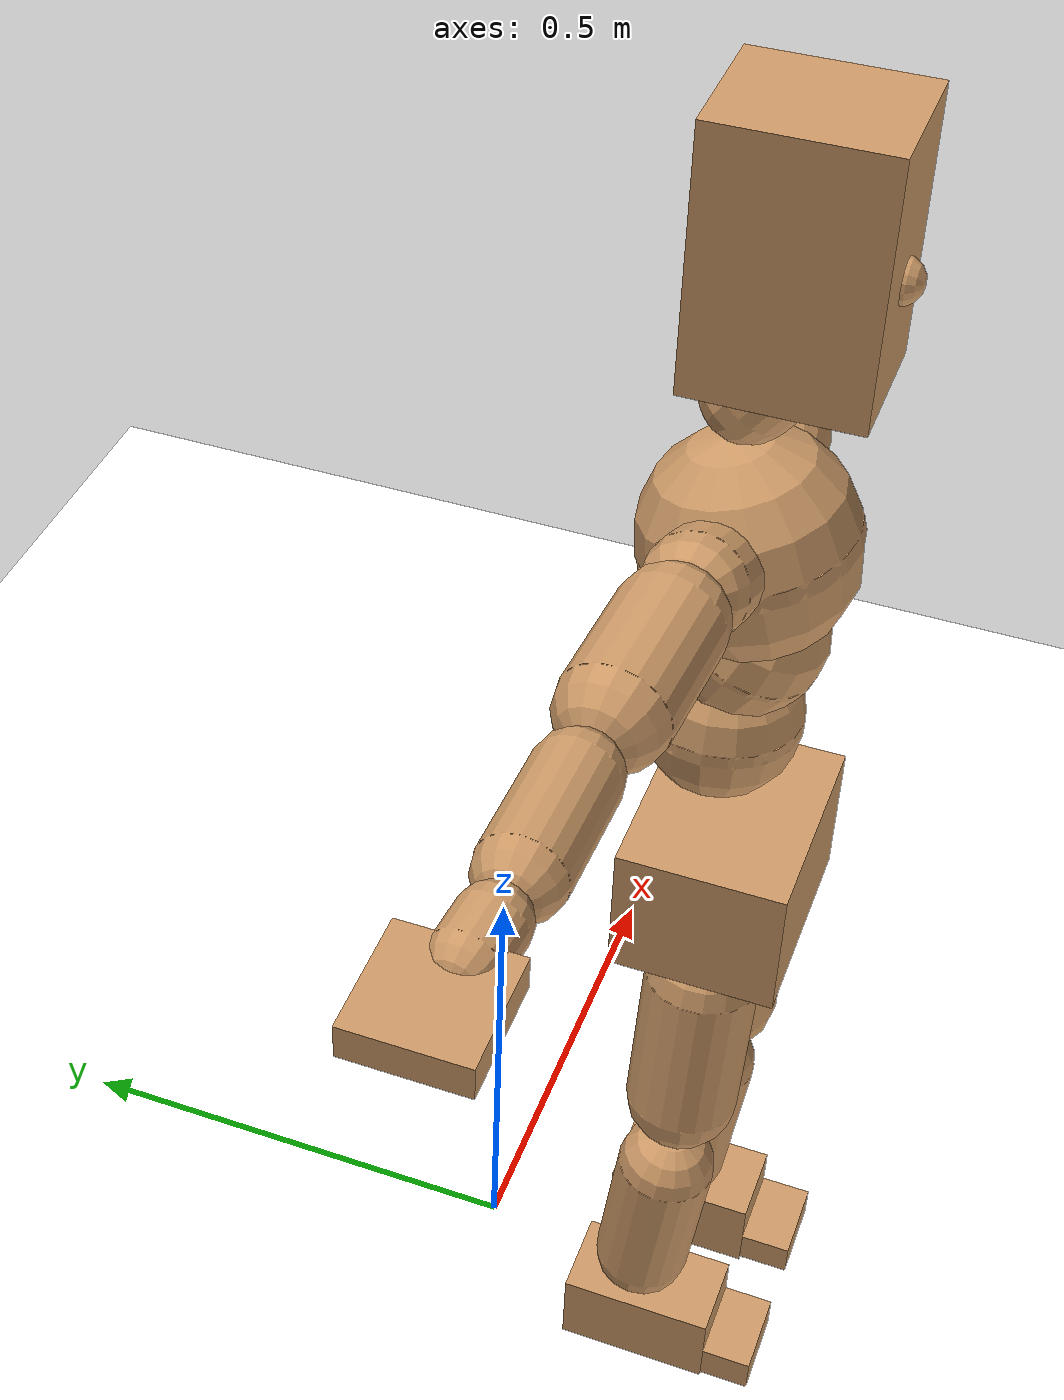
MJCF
<mujoco model="humanoid">
  <option integrator="implicitfast" />

  <visual>
    <global offwidth="1280" offheight="960" />
    <headlight active="1" ambient="0.34 0.34 0.34" diffuse="0.5 0.5 0.5" />
  </visual>

  <default>
    <joint damping="2" stiffness="2" armature="0.01" limited="true" solimplimit="0 .99 .01" />
    <geom condim="1" friction="0.7 0.005 0.0001" solimp=".99 .99 .003" solref="0.015 1" margin="0.001" rgba="0.8 0.6 .4 1" />
    <default class="smplcontact">
      <geom condim="3" friction="1. 0.005 0.0001" solref="0.015 1" solimp="0.98 0.98 0.001" priority="1" />
    </default>
    <default class="stiff_medium">
      <joint stiffness="10" />
    </default>
    <default class="stiff_medium_higher">
      <joint stiffness="50" />
    </default>
    <default class="stiff_high">
      <joint stiffness="100" />
    </default>
  </default>

  <asset>
    <texture type="skybox" builtin="gradient" rgb1="0.99 0.99 0.99" rgb2="0.608 0.828 0.892" width="100" />
    <texture builtin="flat" height="1278" mark="cross" markrgb="1 1 1" name="texgeom" random="0.01" rgb1="0.8 0.6 0.4" rgb2="0.8 0.6 0.4" type="cube" width="127" />
    <texture name="texplane" type="2d" builtin="checker" markrgb="1 1 1" rgb1="0.756 0.772 0.76" rgb2="0.6 0.6 0.6" width="100" height="100" />
    <material name="MatPlane" reflectance="0.5" texture="texplane" texrepeat="1 1" texuniform="true" />
    <material name="geom" texture="texgeom" texuniform="true" />
  </asset>

  <worldbody>
    <light name="tracking_light" pos="0 0 7" dir="0 0 -1" directional="true" cutoff="100" exponent="1" diffuse="1 1 1" specular="0.1 0.1 0.1" mode="trackcom" />
    <camera name="back" pos="0 3 2.4" xyaxes="-1 0 0 0 -1 2" mode="trackcom" />
    <camera name="side" pos="-3 0 2.4" xyaxes="0 -1 0 1 0 2" mode="trackcom" />
    <camera name="front_side" pos="-2.8 -2.8 0.8" xyaxes="0.5 -0.5 0 0.1 0.1 1" mode="trackcom" />
    <geom condim="3" name="floor" pos="0 0 0" rgba="1 1 1 1" size="100 100 .2" type="plane" material="MatPlane" />
    <body name="Pelvis" pos="-0.0018 -0.2233 0.66525" euler="90 0 0">
      <site name="Pelvis" size="0.01" />
      <freejoint name="Pelvis" />
      <geom type="box" pos="-0.0000 -0.0121 -0.0055" size="0.101555 0.06859 0.07885" quat="1.0000 0.0000 0.0000 0.0000" density="3165.830099" name="Pelvis" />
      <body name="L_Hip" pos="0.04865 -0.06398 -0.00476">
        <joint name="L_Hip_x" type="hinge" pos="0 0 0" axis="1 0 0" stiffness="4.344186799999999" range="-160.0 22.92" class="stiff_medium" damping="5.555156892040396" armature="0.0031571967592987503"/>
        <joint name="L_Hip_y" type="hinge" pos="0 0 0" axis="0 1 0" stiffness="4.3671286" range="-70.0 70.0" class="stiff_medium" damping="4.330531155493238" armature="0.00429424040517094"/>
        <joint name="L_Hip_z" type="hinge" pos="0 0 0" axis="0 0 1" stiffness="4.3654527" range="-28.65 90.0" class="stiff_medium" damping="3.711463150639802" armature="0.0031554479375202316"/>
        <geom type="capsule" density="2040.816327" fromto="0.00483 -0.0525 -0.00063 0.01918 -0.21014 -0.00252" size="0.05535" name="L_Hip" />
        <body name="L_Knee" pos="0.02401 -0.26264 -0.00315">
          <joint name="L_Knee_x" type="hinge" pos="0 0 0" axis="1 0 0" range="-5.16 171.89" damping="3.082031583417934" armature="0.003320535558312623" stiffness="0.89395582"/>
          <joint name="L_Knee_y" type="hinge" pos="0 0 0" axis="0 1 0" range="-4.58 6.88" damping="3.560833617253902" armature="0.004510031502913719" stiffness="0.8785648200000001"/>
          <joint name="L_Knee_z" type="hinge" pos="0 0 0" axis="0 0 1" range="-6.88 4.58" damping="3.0913275989675695" armature="0.0033115439814314545" stiffness="0.9017986"/>
          <geom type="capsule" density="1234.567901" fromto="-0.00189 -0.05572 -0.00609 -0.00763 -0.22288 -0.0245" size="0.04869" name="L_Knee" />
          <body name="L_Ankle" pos="-0.00952 -0.2786 -0.03059">
            <joint name="L_Ankle_x" type="hinge" pos="0 0 0" axis="1 0 0" range="-45.84 45.84" class="stiff_medium" damping="2.833557910489229" armature="0.004370550238474147" stiffness="5.103"/>
            <joint name="L_Ankle_y" type="hinge" pos="0 0 0" axis="0 1 0" range="-74.48 22.92" class="stiff_medium" damping="1.4260008016249976" armature="0.004427631428647931" stiffness="5.103"/>
            <joint name="L_Ankle_z" type="hinge" pos="0 0 0" axis="0 0 1" range="-4.58 4.58" class="stiff_medium" damping="2.9699169743777527" armature="0.004801318850946669" stiffness="5.103"/>
            <geom type="box" pos="0.01631 -0.01673 0.01694" size="0.04347 0.04176 0.0765" quat="1.0000 0.0000 0.0000 0.0000" density="449.071558" name="L_Ankle" class="smplcontact" />
            <body name="L_Toe" pos="0.01848 -0.03906 0.08351">
              <joint name="L_Toe_x" type="hinge" pos="0 0 0" axis="1 0 0" range="-91.67 22.92" armature="0.005017997640221378" damping="1.0120640682891513" stiffness="1.0206"/>
              <joint name="L_Toe_y" type="hinge" pos="0 0 0" axis="0 1 0" range="-4.58 4.58" armature="0.005280005687399787" damping="1.0381496813620108" stiffness="1.0206"/>
              <joint name="L_Toe_z" type="hinge" pos="0 0 0" axis="0 0 1" range="-4.58 4.58" armature="0.005809771856276326" damping="1.0889860565237388" stiffness="1.0206"/>
              <geom type="box" pos="-0.0021 0.00385 0.01736" size="0.04302 0.018 0.04464" quat="1.0000 0.0000 0.0000 0.0000" density="423.206892" name="L_Toe" class="smplcontact" />
            </body>
          </body>
        </body>
      </body>
      <body name="R_Hip" pos="-0.04739 -0.06335 -0.00301">
        <joint name="R_Hip_x" type="hinge" pos="0 0 0" axis="1 0 0" stiffness="4.344186799999999" range="-160.0 22.92" class="stiff_medium" damping="5.555156892040396" armature="0.0031571967592987503"/>
        <joint name="R_Hip_y" type="hinge" pos="0 0 0" axis="0 1 0" stiffness="4.3671286" range="-70.0 70.0" class="stiff_medium" damping="4.330531155493238" armature="0.00429424040517094"/>
        <joint name="R_Hip_z" type="hinge" pos="0 0 0" axis="0 0 1" stiffness="4.3654527" range="-90.0 28.65" class="stiff_medium" damping="3.711463150639802" armature="0.0031554479375202316"/>
        <geom type="capsule" density="2040.816327" fromto="-0.00539 -0.05355 -0.00126 -0.02142 -0.21427 -0.00497" size="0.05454" name="R_Hip" />
        <body name="R_Knee" pos="-0.02681 -0.26782 -0.00623">
          <joint name="R_Knee_x" type="hinge" pos="0 0 0" axis="1 0 0" range="-5.16 171.89" damping="3.082031583417934" armature="0.003320535558312623" stiffness="0.89395582"/>
          <joint name="R_Knee_y" type="hinge" pos="0 0 0" axis="0 1 0" range="-6.88 4.58" damping="3.560833617253902" armature="0.004510031502913719" stiffness="0.8785648200000001"/>
          <joint name="R_Knee_z" type="hinge" pos="0 0 0" axis="0 0 1" range="-4.58 6.88" damping="3.0913275989675695" armature="0.0033115439814314545" stiffness="0.9017986"/>
          <geom type="capsule" density="1234.567901" fromto="0.00224 -0.05579 -0.00595 0.00882 -0.22309 -0.02366" size="0.04869" name="R_Knee" />
          <body name="R_Ankle" pos="0.01106 -0.27888 -0.02961">
            <joint name="R_Ankle_x" type="hinge" pos="0 0 0" axis="1 0 0" range="-45.84 45.84" class="stiff_medium" damping="2.833557910489229" armature="0.004370550238474147" stiffness="5.103"/>
            <joint name="R_Ankle_y" type="hinge" pos="0 0 0" axis="0 1 0" range="-22.92 74.48" class="stiff_medium" damping="1.4260008016249976" armature="0.004427631428647931" stiffness="5.103"/>
            <joint name="R_Ankle_z" type="hinge" pos="0 0 0" axis="0 0 1" range="-4.58 4.58" class="stiff_medium" damping="2.9699169743777527" armature="0.004801318850946669" stiffness="5.103"/>
            <geom type="box" pos="-0.01484 -0.01218 0.01792" size="0.04347 0.04302 0.07785" quat="1.0000 0.0000 0.0000 0.0000" density="434.700981" name="R_Ankle" class="smplcontact" />
            <body name="R_Toe" pos="-0.01778 -0.03367 0.08631">
              <joint name="R_Toe_x" type="hinge" pos="0 0 0" axis="1 0 0" range="-91.67 22.92" armature="0.005017997640221378" damping="1.0120640682891513" stiffness="1.0206"/>
              <joint name="R_Toe_y" type="hinge" pos="0 0 0" axis="0 1 0" range="-4.58 4.58" armature="0.005280005687399787" damping="1.0381496813620108" stiffness="1.0206"/>
              <joint name="R_Toe_z" type="hinge" pos="0 0 0" axis="0 0 1" range="-4.58 4.58" armature="0.005809771856276326" damping="1.0889860565237388" stiffness="1.0206"/>
              <geom type="box" pos="0.00294 0.00315 0.01589" size="0.04311 0.01944 0.04437" quat="1.0000 0.0000 0.0000 0.0000" density="407.384095" name="R_Toe" class="smplcontact" />
            </body>
          </body>
        </body>
      </body>
      <body name="Torso" pos="-0.002375 0.10355 -0.025365">
        <joint name="Torso_x" type="hinge" pos="0 0 0" axis="1 0 0" range="-25.78 57.3" class="stiff_medium" damping="11.410257130536884" armature="0.007426156247347625" stiffness="7.791915999999999"/>
        <joint name="Torso_y" type="hinge" pos="0 0 0" axis="0 1 0" range="-57.3 57.3" class="stiff_high" damping="10.606506897932178" armature="0.0035690347601611085" stiffness="78.80141"/>
        <joint name="Torso_z" type="hinge" pos="0 0 0" axis="0 0 1" range="-34.38 34.38" class="stiff_high" damping="13.93665575178658" armature="0.006106323758209975" stiffness="79.52017500000001"/>
        <geom type="capsule" density="2040.816327" fromto="0.002375 0.05776 0.000475 0.00285 0.070585 0.00057" size="0.073055" name="Torso" />
        <body name="Spine" pos="0.005225 0.12844 0.001045">
          <joint name="Spine_x" type="hinge" pos="0 0 0" axis="1 0 0" stiffness="7.759450399999999" range="-25.78 57.3" class="stiff_medium" damping="11.566469202197721" armature="0.007662811319465412"/>
          <joint name="Spine_y" type="hinge" pos="0 0 0" axis="0 1 0" stiffness="7.89704255319149" range="-57.3 57.3" class="stiff_high" damping="4.22945347144943" armature="0.00353935439807588"/>
          <joint name="Spine_z" type="hinge" pos="0 0 0" axis="0 0 1" stiffness="15.349334347826087" range="-34.38 34.38" class="stiff_high" damping="7.711501761005513" armature="0.005380911899864085"/>
          <geom type="capsule" density="2040.816327" fromto="0.000665 0.02261 0.01083 0.00076 0.027645 0.0133" size="0.071725" name="Spine" />
          <body name="Chest" pos="0.001425 0.050255 0.02413">
            <joint name="Chest_x" type="hinge" pos="0 0 0" axis="1 0 0" stiffness="7.727317826086956" range="-25.78 57.3" class="stiff_medium" damping="11.637300721790321" armature="0.007789206560547453"/>
            <joint name="Chest_y" type="hinge" pos="0 0 0" axis="0 1 0" stiffness="6.677841714285714" range="-57.3 57.3" class="stiff_high" damping="3.878962865084181" armature="0.003520587552944373"/>
            <joint name="Chest_z" type="hinge" pos="0 0 0" axis="0 0 1" stiffness="15.619435454545458" range="-34.38 34.38" class="stiff_high" damping="7.525987360492561" armature="0.00503650349904031"/>
            <geom type="capsule" density="2040.816327" fromto="-0.000855 0.06479 -0.016435 -0.00095 0.079135 -0.02014" size="0.09519" name="Chest" />
            <body name="Neck" pos="-0.00266 0.203205 -0.040755">
              <joint name="Neck_x" type="hinge" pos="0 0 0" axis="1 0 0" range="-28.65 57.3" class="stiff_medium_higher" damping="9.915121774686892" armature="0.009965889366369267" stiffness="49.323063999999995"/>
              <joint name="Neck_y" type="hinge" pos="0 0 0" axis="0 1 0" range="-40.11 40.11" class="stiff_medium_higher" damping="9.885266568166198" armature="0.009880798756547682" stiffness="49.448682"/>
              <joint name="Neck_z" type="hinge" pos="0 0 0" axis="0 0 1" range="-40.11 40.11" class="stiff_medium_higher" damping="9.95691078815222" armature="0.009973426325277366" stiffness="49.70211299999999"/>
              <geom type="capsule" density="1000" fromto="0.00095 0.01235 0.009785 0.003895 0.0494 0.039045" size="0.04142" name="Neck" />
              <body name="Head" pos="0.0052 0.065 0.0513">
                <joint name="Head_x" type="hinge" pos="0 0 0" axis="1 0 0" range="-28.65 57.3" class="stiff_medium_higher" damping="2.0000000000000027" armature="0.010000000000000026" stiffness="50.0"/>
                <joint name="Head_y" type="hinge" pos="0 0 0" axis="0 1 0" range="-40.11 40.11" class="stiff_medium_higher" damping="1.9999999999999998" armature="0.009999999999999998" stiffness="50.0"/>
                <joint name="Head_z" type="hinge" pos="0 0 0" axis="0 0 1" range="-40.11 40.11" class="stiff_medium_higher" damping="2.000000000000002" armature="0.010000000000000024" stiffness="50.0"/>
                <geom type="box" pos="-0.0042 0.0876 -0.0116" size="0.0606 0.1154 0.076" quat="1.0000 0.0000 0.0000 0.0000" density="1018.069894" name="Head" />
                <geom type="capsule" name="nose" size="0.02 0.01" pos="0 0.07 0.05" quat="1 0 0 0" mass="0" contype="0" conaffinity="0" />
              </body>
            </body>
            <body name="L_Thorax" pos="0.056736 0.087624 -0.024552">
              <joint name="L_Thorax_x" type="hinge" pos="0 0 0" axis="1 0 0" range="-10.89 4.58" class="stiff_medium_higher" damping="8.762020364976035" armature="0.004165234863310807" stiffness="23.0398175"/>
              <joint name="L_Thorax_y" type="hinge" pos="0 0 0" axis="0 1 0" range="-28.65 17.19" class="stiff_medium_higher" damping="7.861639136772779" armature="0.003372038236422579" stiffness="22.910983499999997"/>
              <joint name="L_Thorax_z" type="hinge" pos="0 0 0" axis="0 0 1" range="-31.51 40.11" class="stiff_medium_higher" damping="7.860982748751484" armature="0.003371318981793662" stiffness="22.912045"/>
              <geom type="capsule" density="1000" fromto="0.013104 0.004392 -0.001296 0.052416 0.017568 -0.005112" size="0.04689" name="L_Thorax" />
              <body name="L_Shoulder" pos="0.06552 0.02196 -0.006408">
                <joint name="L_Shoulder_x" type="hinge" pos="0 0 0" axis="1 0 0" range="-97.4 97.4" class="stiff_medium" damping="2.727151618321391" armature="0.004465008814883359" stiffness="4.6269387"/>
                <joint name="L_Shoulder_y" type="hinge" pos="0 0 0" axis="0 1 0" range="-108.86 80.21" class="stiff_medium" damping="2.369204134236121" armature="0.0033958829858293242" stiffness="4.5914488"/>
                <joint name="L_Shoulder_z" type="hinge" pos="0 0 0" axis="0 0 1" range="-97.4 85.94" class="stiff_medium" damping="2.3695511072614397" armature="0.0033949081131963424" stiffness="4.5941126"/>
                <geom type="capsule" density="1000" fromto="0.037368 -0.001872 -0.00396 0.149544 -0.007344 -0.01584" size="0.04653" name="L_Shoulder" />
                <body name="L_Elbow" pos="0.186912 -0.009216 -0.0198">
                  <joint name="L_Elbow_x" type="hinge" pos="0 0 0" axis="1 0 0" range="-17.19 4.58" damping="2.416776409176871" armature="0.004966636484313595" stiffness="0.9408070399999999"/>
                  <joint name="L_Elbow_y" type="hinge" pos="0 0 0" axis="0 1 0" range="-180.0 17.19" damping="2.0322488857565597" armature="0.0035130693315567215" stiffness="0.94049622"/>
                  <joint name="L_Elbow_z" type="hinge" pos="0 0 0" axis="0 0 1" range="-100.84 4.58" damping="2.031464079806663" armature="0.003507951269150622" stiffness="0.94114108"/>
                  <geom type="capsule" density="1000" fromto="0.035856 0.001296 -0.000144 0.143568 0.005184 -0.000648" size="0.03645" name="L_Elbow" />
                  <body name="L_Wrist" pos="0.179424 0.00648 -0.000864">
                    <joint name="L_Wrist_x" type="hinge" pos="0 0 0" axis="1 0 0" range="-180.0 22.92" armature="0.005163945781302124" damping="1.0222057822483857" stiffness="1.0117308600000001"/>
                    <joint name="L_Wrist_y" type="hinge" pos="0 0 0" axis="0 1 0" range="-17.19 17.19" armature="0.003951844444976075" damping="0.8918016929126314" stiffness="1.00625198"/>
                    <joint name="L_Wrist_z" type="hinge" pos="0 0 0" axis="0 0 1" range="-22.92 22.92" armature="0.0038829669195653794" damping="0.8849545583707051" stiffness="1.0084358"/>
                    <geom type="capsule" density="1000" fromto="0.012096 -0.001152 -0.00216 0.048384 -0.00468 -0.00864" size="0.02862" name="L_Wrist" class="smplcontact" />
                    <body name="L_Hand" pos="0.06048 -0.005904 -0.010728">
                      <joint name="L_Hand_x" type="hinge" pos="0 0 0" axis="1 0 0" range="-17.19 17.19" armature="0.0058122886243469705" damping="1.1046726308091892" stiffness="1.04976"/>
                      <joint name="L_Hand_y" type="hinge" pos="0 0 0" axis="0 1 0" range="-51.57 51.57" armature="0.004784893182599028" damping="1.002296310216211" stiffness="1.04976"/>
                      <joint name="L_Hand_z" type="hinge" pos="0 0 0" axis="0 0 1" range="-91.67 91.67" armature="0.004511026890213564" damping="0.9731901754817083" stiffness="1.04976"/>
                      <geom type="box" pos="0.035496 0.00072 -0.004176" size="0.05265 0.01422 0.04842" quat="1.0000 0.0000 0.0000 0.0000" density="400.552564" name="L_Hand" class="smplcontact" />
                    </body>
                  </body>
                </body>
              </body>
            </body>
            <body name="R_Thorax" pos="-0.058896 0.085536 -0.027792">
              <joint name="R_Thorax_x" type="hinge" pos="0 0 0" axis="1 0 0" range="-10.89 4.58" class="stiff_medium_higher" damping="8.762020364976035" armature="0.004165234863310807" stiffness="23.0398175"/>
              <joint name="R_Thorax_y" type="hinge" pos="0 0 0" axis="0 1 0" range="-17.19 28.65" class="stiff_medium_higher" damping="7.861639136772779" armature="0.003372038236422579" stiffness="22.910983499999997"/>
              <joint name="R_Thorax_z" type="hinge" pos="0 0 0" axis="0 0 1" range="-40.11 31.51" class="stiff_medium_higher" damping="7.860982748751484" armature="0.003371318981793662" stiffness="22.912045"/>
              <geom type="capsule" density="1000" fromto="-0.013824 0.00468 -0.001296 -0.055296 0.01872 -0.005256" size="0.04599" name="R_Thorax" />
              <body name="R_Shoulder" pos="-0.06912 0.023472 -0.006552">
                <joint name="R_Shoulder_x" type="hinge" pos="0 0 0" axis="1 0 0" range="-97.4 97.4" class="stiff_medium" damping="2.727151618321391" armature="0.004465008814883359" stiffness="4.6269387"/>
                <joint name="R_Shoulder_y" type="hinge" pos="0 0 0" axis="0 1 0" range="-80.21 108.86" class="stiff_medium" damping="2.369204134236121" armature="0.0033958829858293242" stiffness="4.5914488"/>
                <joint name="R_Shoulder_z" type="hinge" pos="0 0 0" axis="0 0 1" range="-85.94 97.4" class="stiff_medium" damping="2.3695511072614397" armature="0.0033949081131963424" stiffness="4.5941126"/>
                <geom type="capsule" density="1000" fromto="-0.036504 -0.001944 -0.003096 -0.14616 -0.007704 -0.012312" size="0.04779" name="R_Shoulder" />
                <body name="R_Elbow" pos="-0.182664 -0.009576 -0.015408">
                  <joint name="R_Elbow_x" type="hinge" pos="0 0 0" axis="1 0 0" range="-17.19 4.58" damping="2.416776409176871" armature="0.004966636484313595" stiffness="0.9408070399999999"/>
                  <joint name="R_Elbow_y" type="hinge" pos="0 0 0" axis="0 1 0" range="-17.19 180.0" damping="2.0322488857565597" armature="0.0035130693315567215" stiffness="0.94049622"/>
                  <joint name="R_Elbow_z" type="hinge" pos="0 0 0" axis="0 0 1" range="-4.58 100.84" damping="2.031464079806663" armature="0.003507951269150622" stiffness="0.94114108"/>
                  <geom type="capsule" density="1000" fromto="-0.036792 0.001152 -0.000792 -0.147024 0.004464 -0.003168" size="0.03672" name="R_Elbow" />
                  <body name="R_Wrist" pos="-0.183816 0.005616 -0.004032">
                    <joint name="R_Wrist_x" type="hinge" pos="0 0 0" axis="1 0 0" range="-180.0 22.92" armature="0.005163945781302124" damping="1.0222057822483857" stiffness="1.0117308600000001"/>
                    <joint name="R_Wrist_y" type="hinge" pos="0 0 0" axis="0 1 0" range="-17.19 17.19" armature="0.003951844444976075" damping="0.8918016929126314" stiffness="1.00625198"/>
                    <joint name="R_Wrist_z" type="hinge" pos="0 0 0" axis="0 0 1" range="-22.92 22.92" armature="0.0038829669195653794" damping="0.8849545583707051" stiffness="1.0084358"/>
                    <geom type="capsule" density="1000" fromto="-0.012168 -0.000864 -0.001512 -0.048744 -0.003528 -0.005976" size="0.02934" name="R_Wrist" class="smplcontact" />
                    <body name="R_Hand" pos="-0.060912 -0.004392 -0.007416">
                      <joint name="R_Hand_x" type="hinge" pos="0 0 0" axis="1 0 0" range="-17.19 17.19" armature="0.0058122886243469705" damping="1.1046726308091892" stiffness="1.04976"/>
                      <joint name="R_Hand_y" type="hinge" pos="0 0 0" axis="0 1 0" range="-51.57 51.57" armature="0.004784893182599028" damping="1.002296310216211" stiffness="1.04976"/>
                      <joint name="R_Hand_z" type="hinge" pos="0 0 0" axis="0 0 1" range="-91.67 91.67" armature="0.004511026890213564" damping="0.9731901754817083" stiffness="1.04976"/>
                      <geom type="box" pos="-0.033264 -0.000648 -0.005688" size="0.05121 0.01476 0.04914" quat="1.0000 0.0000 0.0000 0.0000" density="403.679611" name="R_Hand" class="smplcontact" />
                    </body>
                  </body>
                </body>
              </body>
            </body>
          </body>
        </body>
      </body>
    </body>
  </worldbody>
  <actuator>
    <general name="L_Hip_x" joint="L_Hip_x" biastype="affine" gainprm="124.8215471694742" biasprm="-93.54109821775378 -78.1953624 -0.7406875856053862" ctrllimited="true" ctrlrange="-1 1" forcerange="-156.3907248 156.3907248" />
    <general name="L_Hip_y" joint="L_Hip_y" biastype="affine" gainprm="96.03817388929315" biasprm="0.0 -78.6083148 -0.8661062310986476" ctrllimited="true" ctrlrange="-1 1" forcerange="-157.2166296 157.2166296" />
    <general name="L_Hip_z" joint="L_Hip_z" biastype="affine" gainprm="81.3611177875782" biasprm="42.069149399645354 -78.57814859999999 -0.7422926301279604" ctrllimited="true" ctrlrange="-1 1" forcerange="-157.15629719999998 157.15629719999998" />
    <general name="L_Knee_x" joint="L_Knee_x" biastype="affine" gainprm="124.30879843896273" biasprm="117.06301024415845 -80.4560238 -0.7705078958544835" ctrllimited="true" ctrlrange="-1 1" forcerange="-160.9120476 160.9120476" />
    <general name="L_Knee_y" joint="L_Knee_y" biastype="affine" gainprm="7.907665826774369" biasprm="1.5870533509233027 -79.07083380000002 -0.8902084043134755" ctrllimited="true" ctrlrange="-1 1" forcerange="-158.14166760000003 158.14166760000003" />
    <general name="L_Knee_z" joint="L_Knee_z" biastype="affine" gainprm="8.11678524966771" biasprm="-1.6290232176470973 -81.161874 -0.7728318997418924" ctrllimited="true" ctrlrange="-1 1" forcerange="-162.323748 162.323748" />
    <general name="L_Ankle_x" joint="L_Ankle_x" biastype="affine" gainprm="36.744306437427895" biasprm="0.0 -45.927 -0.9445193034964096" ctrllimited="true" ctrlrange="-1 1" forcerange="-91.854 91.854" />
    <general name="L_Ankle_y" joint="L_Ankle_y" biastype="affine" gainprm="39.036817702939324" biasprm="-20.664664484225376 -45.927 -0.9506672010833317" ctrllimited="true" ctrlrange="-1 1" forcerange="-91.854 91.854" />
    <general name="L_Ankle_z" joint="L_Ankle_z" biastype="affine" gainprm="3.671224334280535" biasprm="0.0 -45.927 -0.9899723247925842" ctrllimited="true" ctrlrange="-1 1" forcerange="-91.854 91.854" />
    <general name="L_Toe_x" joint="L_Toe_x" biastype="affine" gainprm="36.74110012796564" biasprm="-22.043377552994478 -36.7416 -0.4048256273156605" ctrllimited="true" ctrlrange="-1 1" forcerange="-73.4832 73.4832" />
    <general name="L_Toe_y" joint="L_Toe_y" biastype="affine" gainprm="2.9369794674244285" biasprm="0.0 -36.7416 -0.41525987254480434" ctrllimited="true" ctrlrange="-1 1" forcerange="-73.4832 73.4832" />
    <general name="L_Toe_z" joint="L_Toe_z" biastype="affine" gainprm="2.9369794674244285" biasprm="0.0 -36.7416 -0.43559442260949555" ctrllimited="true" ctrlrange="-1 1" forcerange="-73.4832 73.4832" />
    <general name="R_Hip_x" joint="R_Hip_x" biastype="affine" gainprm="124.8215471694742" biasprm="-93.54109821775378 -78.1953624 -0.7406875856053862" ctrllimited="true" ctrlrange="-1 1" forcerange="-156.3907248 156.3907248" />
    <general name="R_Hip_y" joint="R_Hip_y" biastype="affine" gainprm="96.03817388929315" biasprm="0.0 -78.6083148 -0.8661062310986476" ctrllimited="true" ctrlrange="-1 1" forcerange="-157.2166296 157.2166296" />
    <general name="R_Hip_z" joint="R_Hip_z" biastype="affine" gainprm="81.3611177875782" biasprm="-42.069149399645354 -78.57814859999999 -0.7422926301279604" ctrllimited="true" ctrlrange="-1 1" forcerange="-157.15629719999998 157.15629719999998" />
    <general name="R_Knee_x" joint="R_Knee_x" biastype="affine" gainprm="124.30879843896273" biasprm="117.06301024415845 -80.4560238 -0.7705078958544835" ctrllimited="true" ctrlrange="-1 1" forcerange="-160.9120476 160.9120476" />
    <general name="R_Knee_y" joint="R_Knee_y" biastype="affine" gainprm="7.907665826774369" biasprm="-1.5870533509233027 -79.07083380000002 -0.8902084043134755" ctrllimited="true" ctrlrange="-1 1" forcerange="-158.14166760000003 158.14166760000003" />
    <general name="R_Knee_z" joint="R_Knee_z" biastype="affine" gainprm="8.11678524966771" biasprm="1.6290232176470973 -81.161874 -0.7728318997418924" ctrllimited="true" ctrlrange="-1 1" forcerange="-162.323748 162.323748" />
    <general name="R_Ankle_x" joint="R_Ankle_x" biastype="affine" gainprm="36.744306437427895" biasprm="0.0 -45.927 -0.9445193034964096" ctrllimited="true" ctrlrange="-1 1" forcerange="-91.854 91.854" />
    <general name="R_Ankle_y" joint="R_Ankle_y" biastype="affine" gainprm="39.036817702939324" biasprm="20.664664484225376 -45.927 -0.9506672010833317" ctrllimited="true" ctrlrange="-1 1" forcerange="-91.854 91.854" />
    <general name="R_Ankle_z" joint="R_Ankle_z" biastype="affine" gainprm="3.671224334280535" biasprm="0.0 -45.927 -0.9899723247925842" ctrllimited="true" ctrlrange="-1 1" forcerange="-91.854 91.854" />
    <general name="R_Toe_x" joint="R_Toe_x" biastype="affine" gainprm="36.74110012796564" biasprm="-22.043377552994478 -36.7416 -0.4048256273156605" ctrllimited="true" ctrlrange="-1 1" forcerange="-73.4832 73.4832" />
    <general name="R_Toe_y" joint="R_Toe_y" biastype="affine" gainprm="2.9369794674244285" biasprm="0.0 -36.7416 -0.41525987254480434" ctrllimited="true" ctrlrange="-1 1" forcerange="-73.4832 73.4832" />
    <general name="R_Toe_z" joint="R_Toe_z" biastype="affine" gainprm="2.9369794674244285" biasprm="0.0 -36.7416 -0.43559442260949555" ctrllimited="true" ctrlrange="-1 1" forcerange="-73.4832 73.4832" />
    <general name="Torso_x" joint="Torso_x" biastype="affine" gainprm="135.58116568754042" biasprm="51.43859343369371 -187.00598399999996 -3.0427352348098355" ctrllimited="true" ctrlrange="-1 1" forcerange="-280.50897599999996 280.50897599999996" />
    <general name="Torso_y" joint="Torso_y" biastype="affine" gainprm="189.13731509186718" biasprm="0.0 -189.12338400000002 -2.1213013795864355" ctrllimited="true" ctrlrange="-1 1" forcerange="-283.68507600000004 283.68507600000004" />
    <general name="Torso_z" joint="Torso_z" biastype="affine" gainprm="114.51748689625292" biasprm="0.0 -190.84842 -2.787331150357316" ctrllimited="true" ctrlrange="-1 1" forcerange="-286.27263 286.27263" />
    <general name="Spine_x" joint="Spine_x" biastype="affine" gainprm="135.0162566340104" biasprm="51.22427069215223 -186.22680959999997 -3.084391787252726" ctrllimited="true" ctrlrange="-1 1" forcerange="-279.3402143999999 279.3402143999999" />
    <general name="Spine_y" joint="Spine_y" biastype="affine" gainprm="189.54298224826968" biasprm="0.0 -189.52902127659576 -2.114726735724715" ctrllimited="true" ctrlrange="-1 1" forcerange="-284.29353191489366 284.29353191489366" />
    <general name="Spine_z" joint="Spine_z" biastype="affine" gainprm="110.52334800843802" biasprm="0.0 -184.19201217391304 -2.570500587001838" ctrllimited="true" ctrlrange="-1 1" forcerange="-276.28801826086953 276.28801826086953" />
    <general name="Chest_x" joint="Chest_x" biastype="affine" gainprm="134.45714231249164" biasprm="51.01214643343447 -185.45562782608695 -3.103280192477419" ctrllimited="true" ctrlrange="-1 1" forcerange="-278.18344173913044 278.18344173913044" />
    <general name="Chest_y" joint="Chest_y" biastype="affine" gainprm="160.28000672176697" biasprm="0.0 -160.26820114285712 -1.9394814325420906" ctrllimited="true" ctrlrange="-1 1" forcerange="-240.4023017142857 240.4023017142857" />
    <general name="Chest_z" joint="Chest_z" biastype="affine" gainprm="112.46821922818818" biasprm="0.0 -187.4332254545455 -2.50866245349752" ctrllimited="true" ctrlrange="-1 1" forcerange="-281.14983818181827 281.14983818181827" />
    <general name="Neck_x" joint="Neck_x" biastype="affine" gainprm="26.636416491018043" biasprm="8.878805497006015 -35.51260608 -0.7932097419749514" ctrllimited="true" ctrlrange="-1 1" forcerange="-71.02521216 71.02521216" />
    <general name="Neck_y" joint="Neck_y" biastype="affine" gainprm="24.923971527228048" biasprm="0.0 -35.60305104 -0.790821325453296" ctrllimited="true" ctrlrange="-1 1" forcerange="-71.20610208 71.20610208" />
    <general name="Neck_z" joint="Neck_z" biastype="affine" gainprm="25.05171015994058" biasprm="0.0 -35.78552136 -0.7965528630521777" ctrllimited="true" ctrlrange="-1 1" forcerange="-71.57104272 71.57104272" />
    <general name="Head_x" joint="Head_x" biastype="affine" gainprm="18.001325905069514" biasprm="6.000441968356505 -24.0 -0.8000000000000012" ctrllimited="true" ctrlrange="-1 1" forcerange="-48.0 48.0" />
    <general name="Head_y" joint="Head_y" biastype="affine" gainprm="16.801237511398213" biasprm="0.0 -24.0 -0.7999999999999999" ctrllimited="true" ctrlrange="-1 1" forcerange="-48.0 48.0" />
    <general name="Head_z" joint="Head_z" biastype="affine" gainprm="16.801237511398213" biasprm="0.0 -24.0 -0.8000000000000009" ctrllimited="true" ctrlrange="-1 1" forcerange="-48.0 48.0" />
    <general name="L_Thorax_x" joint="L_Thorax_x" biastype="affine" gainprm="7.46496820018551" biasprm="-3.0448577468112856 -55.295562000000004 -0.7009616291980828" ctrllimited="true" ctrlrange="-1 1" forcerange="-110.59112400000001 110.59112400000001" />
    <general name="L_Thorax_y" joint="L_Thorax_y" biastype="affine" gainprm="21.99616430875574" biasprm="-5.499041077188935 -54.986360399999995 -0.6289311309418224" ctrllimited="true" ctrlrange="-1 1" forcerange="-109.97272079999999 109.97272079999999" />
    <general name="L_Thorax_z" joint="L_Thorax_z" biastype="affine" gainprm="34.36819975597651" biasprm="4.126871235707874 -54.988907999999995 -0.6288786199001187" ctrllimited="true" ctrlrange="-1 1" forcerange="-109.97781599999999 109.97781599999999" />
    <general name="L_Shoulder_x" joint="L_Shoulder_x" biastype="affine" gainprm="37.75472468316939" biasprm="0.0 -22.20930576 -0.727240431552371" ctrllimited="true" ctrlrange="-1 1" forcerange="-44.41861152 44.41861152" />
    <general name="L_Shoulder_y" joint="L_Shoulder_y" biastype="affine" gainprm="36.3631066159539" biasprm="-5.510144415016023 -22.038954240000002 -0.6317877691296324" ctrllimited="true" ctrlrange="-1 1" forcerange="-44.077908480000005 44.077908480000005" />
    <general name="L_Shoulder_z" joint="L_Shoulder_z" biastype="affine" gainprm="35.281534992294425" biasprm="-2.2053364841916383 -22.05174048 -0.6318802952697173" ctrllimited="true" ctrlrange="-1 1" forcerange="-44.10348096 44.10348096" />
    <general name="L_Elbow_x" joint="L_Elbow_x" biastype="affine" gainprm="6.434411920518909" biasprm="-3.7270525639753544 -33.869053439999995 -0.3866842254682994" ctrllimited="true" ctrlrange="-1 1" forcerange="-67.73810687999999 67.73810687999999" />
    <general name="L_Elbow_y" joint="L_Elbow_y" biastype="affine" gainprm="58.26286196926924" biasprm="-48.10475458804567 -33.85786392 -0.3251598217210496" ctrllimited="true" ctrlrange="-1 1" forcerange="-67.71572784 67.71572784" />
    <general name="L_Elbow_z" joint="L_Elbow_z" biastype="affine" gainprm="31.169340620578037" biasprm="-28.461019997503723 -33.88107888 -0.32503425276906617" ctrllimited="true" ctrlrange="-1 1" forcerange="-67.76215776 67.76215776" />
    <general name="L_Wrist_x" joint="L_Wrist_x" biastype="affine" gainprm="10.749505174163335" biasprm="-8.321172248953168 -6.070385160000001 -0.4088823128993543" ctrllimited="true" ctrlrange="-1 1" forcerange="-12.140770320000001 12.140770320000001" />
    <general name="L_Wrist_y" joint="L_Wrist_y" biastype="affine" gainprm="1.8113869834601495" biasprm="0.0 -6.03751188 -0.3567206771650526" ctrllimited="true" ctrlrange="-1 1" forcerange="-12.07502376 12.07502376" />
    <general name="L_Wrist_z" joint="L_Wrist_z" biastype="affine" gainprm="2.420424198685267" biasprm="0.0 -6.0506148 -0.3539818233482821" ctrllimited="true" ctrlrange="-1 1" forcerange="-12.1012296 12.1012296" />
    <general name="L_Hand_x" joint="L_Hand_x" biastype="affine" gainprm="1.8897071882105778" biasprm="0.0 -6.29856 -0.4418690523236757" ctrllimited="true" ctrlrange="-1 1" forcerange="-12.59712 12.59712" />
    <general name="L_Hand_y" joint="L_Hand_y" biastype="affine" gainprm="5.669121564631732" biasprm="0.0 -6.29856 -0.40091852408648443" ctrllimited="true" ctrlrange="-1 1" forcerange="-12.59712 12.59712" />
    <general name="L_Hand_z" joint="L_Hand_z" biastype="affine" gainprm="10.077339031021735" biasprm="0.0 -6.29856 -0.38927607019268334" ctrllimited="true" ctrlrange="-1 1" forcerange="-12.59712 12.59712" />
    <general name="R_Thorax_x" joint="R_Thorax_x" biastype="affine" gainprm="7.46496820018551" biasprm="-3.0448577468112856 -55.295562000000004 -0.7009616291980828" ctrllimited="true" ctrlrange="-1 1" forcerange="-110.59112400000001 110.59112400000001" />
    <general name="R_Thorax_y" joint="R_Thorax_y" biastype="affine" gainprm="21.99616430875574" biasprm="5.499041077188933 -54.986360399999995 -0.6289311309418224" ctrllimited="true" ctrlrange="-1 1" forcerange="-109.97272079999999 109.97272079999999" />
    <general name="R_Thorax_z" joint="R_Thorax_z" biastype="affine" gainprm="34.36819975597651" biasprm="-4.126871235707874 -54.988907999999995 -0.6288786199001187" ctrllimited="true" ctrlrange="-1 1" forcerange="-109.97781599999999 109.97781599999999" />
    <general name="R_Shoulder_x" joint="R_Shoulder_x" biastype="affine" gainprm="37.75472468316939" biasprm="0.0 -22.20930576 -0.727240431552371" ctrllimited="true" ctrlrange="-1 1" forcerange="-44.41861152 44.41861152" />
    <general name="R_Shoulder_y" joint="R_Shoulder_y" biastype="affine" gainprm="36.3631066159539" biasprm="5.510144415016023 -22.038954240000002 -0.6317877691296324" ctrllimited="true" ctrlrange="-1 1" forcerange="-44.077908480000005 44.077908480000005" />
    <general name="R_Shoulder_z" joint="R_Shoulder_z" biastype="affine" gainprm="35.281534992294425" biasprm="2.2053364841916334 -22.05174048 -0.6318802952697173" ctrllimited="true" ctrlrange="-1 1" forcerange="-44.10348096 44.10348096" />
    <general name="R_Elbow_x" joint="R_Elbow_x" biastype="affine" gainprm="6.434411920518909" biasprm="-3.7270525639753544 -33.869053439999995 -0.3866842254682994" ctrllimited="true" ctrlrange="-1 1" forcerange="-67.73810687999999 67.73810687999999" />
    <general name="R_Elbow_y" joint="R_Elbow_y" biastype="affine" gainprm="58.26286196926924" biasprm="48.10475458804567 -33.85786392 -0.3251598217210496" ctrllimited="true" ctrlrange="-1 1" forcerange="-67.71572784 67.71572784" />
    <general name="R_Elbow_z" joint="R_Elbow_z" biastype="affine" gainprm="31.169340620578037" biasprm="28.46101999750372 -33.88107888 -0.32503425276906617" ctrllimited="true" ctrlrange="-1 1" forcerange="-67.76215776 67.76215776" />
    <general name="R_Wrist_x" joint="R_Wrist_x" biastype="affine" gainprm="10.749505174163335" biasprm="-8.321172248953168 -6.070385160000001 -0.4088823128993543" ctrllimited="true" ctrlrange="-1 1" forcerange="-12.140770320000001 12.140770320000001" />
    <general name="R_Wrist_y" joint="R_Wrist_y" biastype="affine" gainprm="1.8113869834601495" biasprm="0.0 -6.03751188 -0.3567206771650526" ctrllimited="true" ctrlrange="-1 1" forcerange="-12.07502376 12.07502376" />
    <general name="R_Wrist_z" joint="R_Wrist_z" biastype="affine" gainprm="2.420424198685267" biasprm="0.0 -6.0506148 -0.3539818233482821" ctrllimited="true" ctrlrange="-1 1" forcerange="-12.1012296 12.1012296" />
    <general name="R_Hand_x" joint="R_Hand_x" biastype="affine" gainprm="1.8897071882105778" biasprm="0.0 -6.29856 -0.4418690523236757" ctrllimited="true" ctrlrange="-1 1" forcerange="-12.59712 12.59712" />
    <general name="R_Hand_y" joint="R_Hand_y" biastype="affine" gainprm="5.669121564631732" biasprm="0.0 -6.29856 -0.40091852408648443" ctrllimited="true" ctrlrange="-1 1" forcerange="-12.59712 12.59712" />
    <general name="R_Hand_z" joint="R_Hand_z" biastype="affine" gainprm="10.077339031021735" biasprm="0.0 -6.29856 -0.38927607019268334" ctrllimited="true" ctrlrange="-1 1" forcerange="-12.59712 12.59712" />
  </actuator>
  <contact>
    <exclude body1="Torso" body2="Chest" />
    <exclude body1="Head" body2="Chest" />
    <exclude body1="R_Knee" body2="R_Toe" />
    <exclude body1="R_Knee" body2="L_Ankle" />
    <exclude body1="R_Knee" body2="L_Toe" />
    <exclude body1="L_Knee" body2="L_Toe" />
    <exclude body1="L_Knee" body2="R_Ankle" />
    <exclude body1="L_Knee" body2="R_Toe" />
    <exclude body1="L_Shoulder" body2="Chest" />
    <exclude body1="R_Shoulder" body2="Chest" />
  </contact>
  <sensor>
    <framelinvel name="sensor_Pelvis_framelinvel" objtype="xbody" objname="Pelvis" />
    <framelinvel name="sensor_L_Hip_framelinvel" objtype="xbody" objname="L_Hip" />
    <framelinvel name="sensor_L_Knee_framelinvel" objtype="xbody" objname="L_Knee" />
    <framelinvel name="sensor_L_Ankle_framelinvel" objtype="xbody" objname="L_Ankle" />
    <framelinvel name="sensor_L_Toe_framelinvel" objtype="xbody" objname="L_Toe" />
    <framelinvel name="sensor_R_Hip_framelinvel" objtype="xbody" objname="R_Hip" />
    <framelinvel name="sensor_R_Knee_framelinvel" objtype="xbody" objname="R_Knee" />
    <framelinvel name="sensor_R_Ankle_framelinvel" objtype="xbody" objname="R_Ankle" />
    <framelinvel name="sensor_R_Toe_framelinvel" objtype="xbody" objname="R_Toe" />
    <framelinvel name="sensor_Torso_framelinvel" objtype="xbody" objname="Torso" />
    <framelinvel name="sensor_Spine_framelinvel" objtype="xbody" objname="Spine" />
    <framelinvel name="sensor_Chest_framelinvel" objtype="xbody" objname="Chest" />
    <framelinvel name="sensor_Neck_framelinvel" objtype="xbody" objname="Neck" />
    <framelinvel name="sensor_Head_framelinvel" objtype="xbody" objname="Head" />
    <framelinvel name="sensor_L_Thorax_framelinvel" objtype="xbody" objname="L_Thorax" />
    <framelinvel name="sensor_L_Shoulder_framelinvel" objtype="xbody" objname="L_Shoulder" />
    <framelinvel name="sensor_L_Elbow_framelinvel" objtype="xbody" objname="L_Elbow" />
    <framelinvel name="sensor_L_Wrist_framelinvel" objtype="xbody" objname="L_Wrist" />
    <framelinvel name="sensor_L_Hand_framelinvel" objtype="xbody" objname="L_Hand" />
    <framelinvel name="sensor_R_Thorax_framelinvel" objtype="xbody" objname="R_Thorax" />
    <framelinvel name="sensor_R_Shoulder_framelinvel" objtype="xbody" objname="R_Shoulder" />
    <framelinvel name="sensor_R_Elbow_framelinvel" objtype="xbody" objname="R_Elbow" />
    <framelinvel name="sensor_R_Wrist_framelinvel" objtype="xbody" objname="R_Wrist" />
    <framelinvel name="sensor_R_Hand_framelinvel" objtype="xbody" objname="R_Hand" />
    <frameangvel name="sensor_Pelvis_frameangvel" objtype="xbody" objname="Pelvis" />
    <frameangvel name="sensor_L_Hip_frameangvel" objtype="xbody" objname="L_Hip" />
    <frameangvel name="sensor_L_Knee_frameangvel" objtype="xbody" objname="L_Knee" />
    <frameangvel name="sensor_L_Ankle_frameangvel" objtype="xbody" objname="L_Ankle" />
    <frameangvel name="sensor_L_Toe_frameangvel" objtype="xbody" objname="L_Toe" />
    <frameangvel name="sensor_R_Hip_frameangvel" objtype="xbody" objname="R_Hip" />
    <frameangvel name="sensor_R_Knee_frameangvel" objtype="xbody" objname="R_Knee" />
    <frameangvel name="sensor_R_Ankle_frameangvel" objtype="xbody" objname="R_Ankle" />
    <frameangvel name="sensor_R_Toe_frameangvel" objtype="xbody" objname="R_Toe" />
    <frameangvel name="sensor_Torso_frameangvel" objtype="xbody" objname="Torso" />
    <frameangvel name="sensor_Spine_frameangvel" objtype="xbody" objname="Spine" />
    <frameangvel name="sensor_Chest_frameangvel" objtype="xbody" objname="Chest" />
    <frameangvel name="sensor_Neck_frameangvel" objtype="xbody" objname="Neck" />
    <frameangvel name="sensor_Head_frameangvel" objtype="xbody" objname="Head" />
    <frameangvel name="sensor_L_Thorax_frameangvel" objtype="xbody" objname="L_Thorax" />
    <frameangvel name="sensor_L_Shoulder_frameangvel" objtype="xbody" objname="L_Shoulder" />
    <frameangvel name="sensor_L_Elbow_frameangvel" objtype="xbody" objname="L_Elbow" />
    <frameangvel name="sensor_L_Wrist_frameangvel" objtype="xbody" objname="L_Wrist" />
    <frameangvel name="sensor_L_Hand_frameangvel" objtype="xbody" objname="L_Hand" />
    <frameangvel name="sensor_R_Thorax_frameangvel" objtype="xbody" objname="R_Thorax" />
    <frameangvel name="sensor_R_Shoulder_frameangvel" objtype="xbody" objname="R_Shoulder" />
    <frameangvel name="sensor_R_Elbow_frameangvel" objtype="xbody" objname="R_Elbow" />
    <frameangvel name="sensor_R_Wrist_frameangvel" objtype="xbody" objname="R_Wrist" />
    <frameangvel name="sensor_R_Hand_frameangvel" objtype="xbody" objname="R_Hand" />
    <subtreelinvel name="Chest_subtreelinvel" body="Chest" />
    <gyro name="Pelvis_gyro" site="Pelvis" />
  </sensor>
</mujoco>
